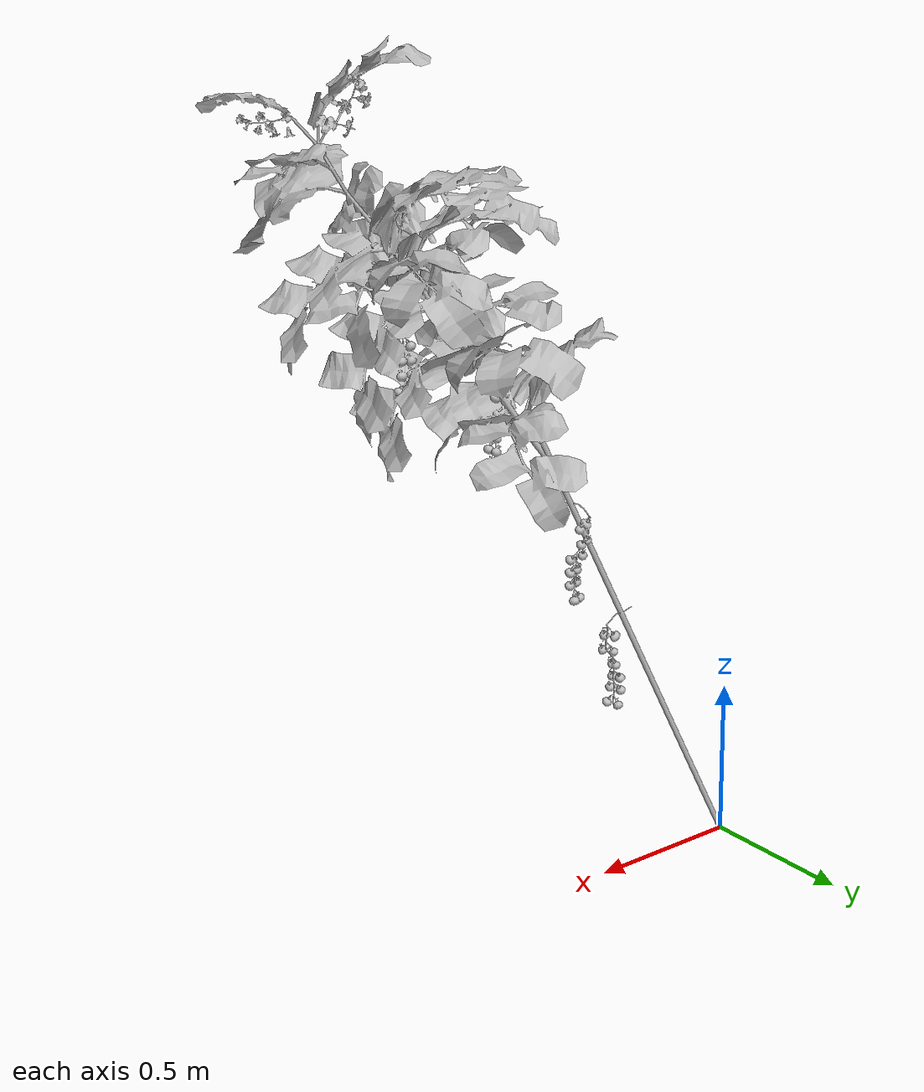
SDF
<?xml version="1.0"?>
<sdf version="1.6">
  <model name="tomato_vine_repo_v5">
    <static>true</static>
    <link name="link">
      <collision name="collision_trunk">
        <geometry><cylinder><radius>0.014</radius><length>1.628</length></cylinder></geometry>
        <pose>0.3775 0 0.7211 0 0.4822 0</pose>
      </collision>
      <visual name="plant">
        <geometry>
          <mesh>
            <uri>model://tomato_vine_repo_v5/meshes/tomato_vine_repo_v5.dae</uri>
          </mesh>
        </geometry>
      </visual>
    </link>
  </model>
</sdf>
